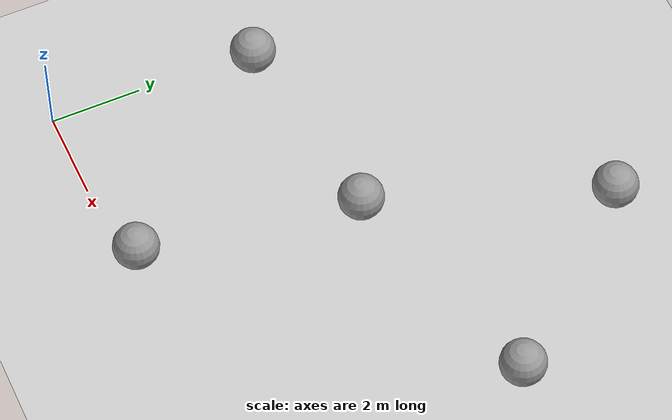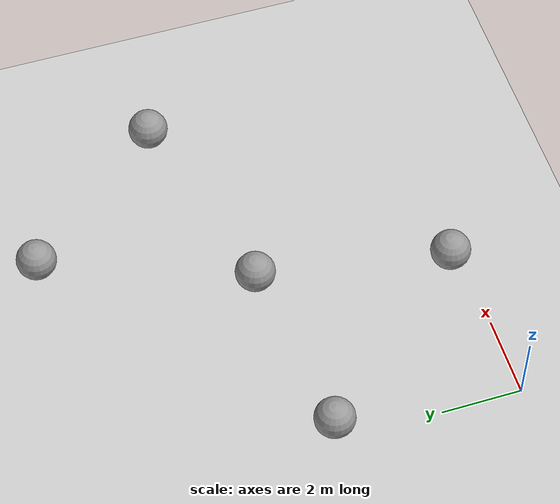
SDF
<sdf version="1.6">
 <world name="base_world">
  <physics name="default_physics" default="0" type="ode">
   <max_step_size>0.001</max_step_size>
   <real_time_factor>1</real_time_factor>
   <real_time_update_rate>1000</real_time_update_rate>
  </physics>
  <light name="sun" type="directional">
   <pose>0 0 10 0 -0 0</pose>
   <diffuse>0.8 0.8 0.8 1</diffuse>
   <specular>0.2 0.2 0.2 1</specular>
   <attenuation>
    <range>1000</range>
    <constant>0.9</constant>
    <linear>0.01</linear>
    <quadratic>0.001</quadratic>
   </attenuation>
   <direction>-0.5 0.1 -0.9</direction>
  </light>
  <model name="ground_plane">
   <static>1</static>
   <link name="link">
    <collision name="collision">
     <geometry><plane><normal>0 0 1</normal><size>100 100</size></plane></geometry>
     <surface>
      <contact><collide_bitmask>65535</collide_bitmask></contact>
      <friction><ode><mu>100</mu><mu2>50</mu2></ode></friction>
     </surface>
    </collision>
    <visual name="visual">
     <cast_shadows>0</cast_shadows>
     <geometry><plane><normal>0 0 1</normal><size>100 100</size></plane></geometry>
     <material>
      <script><uri>file://media/materials/scripts/gazebo.material</uri><name>Gazebo/Grey</name></script>
     </material>
    </visual>
   </link>
  </model>
  <gravity>0 0 -9.81</gravity>
  <magnetic_field>6e-06 2.3e-05 -4.2e-05</magnetic_field>
  <atmosphere type="adiabatic"/>
  <scene><ambient>0.4 0.4 0.4 1</ambient><background>0.7 0.7 0.7 1</background><shadows>1</shadows></scene>
  <audio><device>default</device></audio>
  <spherical_coordinates>
   <surface_model>EARTH_WGS84</surface_model>
   <latitude_deg>0</latitude_deg>
   <longitude_deg>0</longitude_deg>
   <elevation>0</elevation>
   <heading_deg>0</heading_deg>
  </spherical_coordinates>
  <model name="unit_sphere">
   <pose>0.362634 4.53856 0.5 0 -0 0</pose>
   <link name="link">
    <inertial>
     <mass>1</mass>
     <inertia><ixx>0.1</ixx><ixy>0</ixy><ixz>0</ixz><iyy>0.1</iyy><iyz>0</iyz><izz>0.1</izz></inertia>
    </inertial>
    <collision name="collision"><geometry><sphere><radius>0.5</radius></sphere></geometry></collision>
    <visual name="visual">
     <geometry><sphere><radius>0.5</radius></sphere></geometry>
     <material>
      <script><name>Gazebo/Grey</name><uri>file://media/materials/scripts/gazebo.material</uri></script>
     </material>
    </visual>
   </link>
  </model>
  <model name="unit_sphere_0">
   <pose>4.01269 0.330839 0.5 0 -0 0</pose>
   <link name="link">
    <inertial>
     <mass>1</mass>
     <inertia><ixx>0.1</ixx><ixy>0</ixy><ixz>0</ixz><iyy>0.1</iyy><iyz>0</iyz><izz>0.1</izz></inertia>
    </inertial>
    <collision name="collision"><geometry><sphere><radius>0.5</radius></sphere></geometry></collision>
    <visual name="visual">
     <geometry><sphere><radius>0.5</radius></sphere></geometry>
     <material>
      <script><name>Gazebo/Grey</name><uri>file://media/materials/scripts/gazebo.material</uri></script>
     </material>
    </visual>
   </link>
  </model>
  <model name="unit_sphere_1">
   <pose>4.81354 5.09235 0.5 0 -0 0</pose>
   <link name="link">
    <inertial>
     <mass>1</mass>
     <inertia><ixx>0.1</ixx><ixy>0</ixy><ixz>0</ixz><iyy>0.1</iyy><iyz>0</iyz><izz>0.1</izz></inertia>
    </inertial>
    <collision name="collision"><geometry><sphere><radius>0.5</radius></sphere></geometry></collision>
    <visual name="visual">
     <geometry><sphere><radius>0.5</radius></sphere></geometry>
     <material>
      <script><name>Gazebo/Grey</name><uri>file://media/materials/scripts/gazebo.material</uri></script>
     </material>
    </visual>
   </link>
  </model>
  <model name="unit_sphere_2">
   <pose>9.83277 6.40795 0.5 0 -0 0</pose>
   <link name="link">
    <inertial>
     <mass>1</mass>
     <inertia><ixx>0.1</ixx><ixy>0</ixy><ixz>0</ixz><iyy>0.1</iyy><iyz>0</iyz><izz>0.1</izz></inertia>
    </inertial>
    <collision name="collision"><geometry><sphere><radius>0.5</radius></sphere></geometry></collision>
    <visual name="visual">
     <geometry><sphere><radius>0.5</radius></sphere></geometry>
     <material>
      <script><name>Gazebo/Grey</name><uri>file://media/materials/scripts/gazebo.material</uri></script>
     </material>
    </visual>
   </link>
  </model>
  <model name="unit_sphere_3">
   <pose>6.73258 10.0925 0.5 0 -0 0</pose>
   <link name="link">
    <inertial>
     <mass>1</mass>
     <inertia><ixx>0.1</ixx><ixy>0</ixy><ixz>0</ixz><iyy>0.1</iyy><iyz>0</iyz><izz>0.1</izz></inertia>
    </inertial>
    <collision name="collision"><geometry><sphere><radius>0.5</radius></sphere></geometry></collision>
    <visual name="visual">
     <geometry><sphere><radius>0.5</radius></sphere></geometry>
     <material>
      <script><name>Gazebo/Grey</name><uri>file://media/materials/scripts/gazebo.material</uri></script>
     </material>
    </visual>
   </link>
  </model>
 </world>
</sdf>
